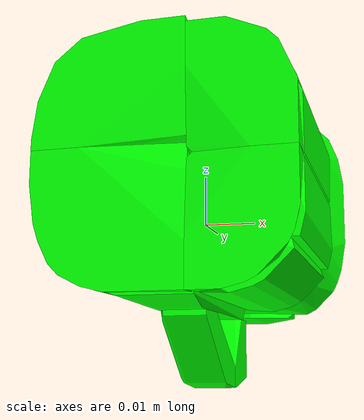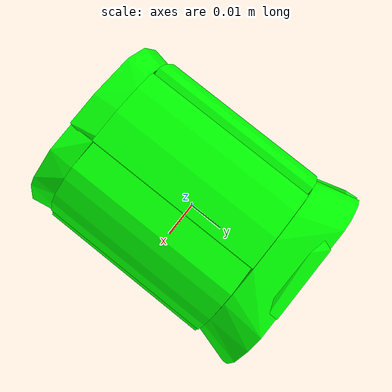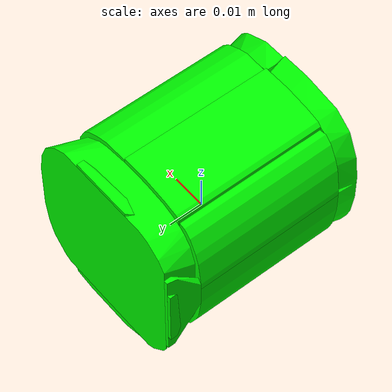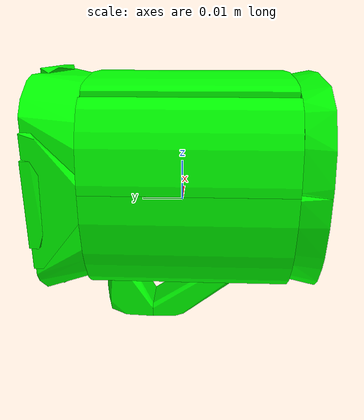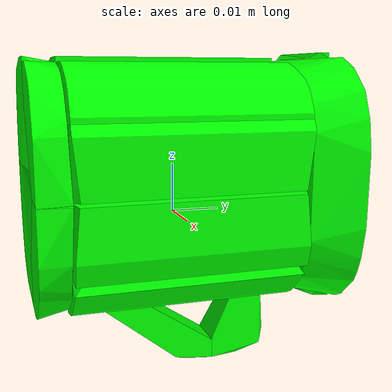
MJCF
<mujoco model="shapenet9-15">
  <asset>
    <mesh file="meshes/shapenet9-15/shapenet9-15_0.stl" name="shapenet9-15_0" scale="0.1 0.1 0.1"/>
    <mesh file="meshes/shapenet9-15/shapenet9-15_1.stl" name="shapenet9-15_1" scale="0.1 0.1 0.1"/>
    <mesh file="meshes/shapenet9-15/shapenet9-15_2.stl" name="shapenet9-15_2" scale="0.1 0.1 0.1"/>
    <mesh file="meshes/shapenet9-15/shapenet9-15_3.stl" name="shapenet9-15_3" scale="0.1 0.1 0.1"/>
    <mesh file="meshes/shapenet9-15/shapenet9-15_4.stl" name="shapenet9-15_4" scale="0.1 0.1 0.1"/>
    <mesh file="meshes/shapenet9-15/shapenet9-15_5.stl" name="shapenet9-15_5" scale="0.1 0.1 0.1"/>
    <mesh file="meshes/shapenet9-15/shapenet9-15_6.stl" name="shapenet9-15_6" scale="0.1 0.1 0.1"/>
    <mesh file="meshes/shapenet9-15/shapenet9-15_7.stl" name="shapenet9-15_7" scale="0.1 0.1 0.1"/>
    <mesh file="meshes/shapenet9-15/shapenet9-15_8.stl" name="shapenet9-15_8" scale="0.1 0.1 0.1"/>
    <mesh file="meshes/shapenet9-15/shapenet9-15_9.stl" name="shapenet9-15_9" scale="0.1 0.1 0.1"/>
    <mesh file="meshes/shapenet9-15/shapenet9-15_10.stl" name="shapenet9-15_10" scale="0.1 0.1 0.1"/>
    <mesh file="meshes/shapenet9-15/shapenet9-15_11.stl" name="shapenet9-15_11" scale="0.1 0.1 0.1"/>
    <mesh file="meshes/shapenet9-15/shapenet9-15_12.stl" name="shapenet9-15_12" scale="0.1 0.1 0.1"/>
    <mesh file="meshes/shapenet9-15/shapenet9-15_13.stl" name="shapenet9-15_13" scale="0.1 0.1 0.1"/>
    <mesh file="meshes/shapenet9-15/shapenet9-15_14.stl" name="shapenet9-15_14" scale="0.1 0.1 0.1"/>
    <mesh file="meshes/shapenet9-15/shapenet9-15_15.stl" name="shapenet9-15_15" scale="0.1 0.1 0.1"/>
    <mesh file="meshes/shapenet9-15/shapenet9-15_16.stl" name="shapenet9-15_16" scale="0.1 0.1 0.1"/>
    <mesh file="meshes/shapenet9-15/shapenet9-15_17.stl" name="shapenet9-15_17" scale="0.1 0.1 0.1"/>
    <mesh file="meshes/shapenet9-15/shapenet9-15_18.stl" name="shapenet9-15_18" scale="0.1 0.1 0.1"/>
  </asset>
  <worldbody>
    <body>
      <body name="collision">
        <geom pos="0 0 0" mesh="shapenet9-15_0" type="mesh" solimp="0.998 0.998 0.001" solref="0.001 1" density="100" friction="0.95 0.3 0.1" rgba="0 1 0 1" group="1" condim="4"/>
        <geom pos="0 0 0" mesh="shapenet9-15_1" type="mesh" solimp="0.998 0.998 0.001" solref="0.001 1" density="100" friction="0.95 0.3 0.1" rgba="0 1 0 1" group="1" condim="4"/>
        <geom pos="0 0 0" mesh="shapenet9-15_2" type="mesh" solimp="0.998 0.998 0.001" solref="0.001 1" density="100" friction="0.95 0.3 0.1" rgba="0 1 0 1" group="1" condim="4"/>
        <geom pos="0 0 0" mesh="shapenet9-15_3" type="mesh" solimp="0.998 0.998 0.001" solref="0.001 1" density="100" friction="0.95 0.3 0.1" rgba="0 1 0 1" group="1" condim="4"/>
        <geom pos="0 0 0" mesh="shapenet9-15_4" type="mesh" solimp="0.998 0.998 0.001" solref="0.001 1" density="100" friction="0.95 0.3 0.1" rgba="0 1 0 1" group="1" condim="4"/>
        <geom pos="0 0 0" mesh="shapenet9-15_5" type="mesh" solimp="0.998 0.998 0.001" solref="0.001 1" density="100" friction="0.95 0.3 0.1" rgba="0 1 0 1" group="1" condim="4"/>
        <geom pos="0 0 0" mesh="shapenet9-15_6" type="mesh" solimp="0.998 0.998 0.001" solref="0.001 1" density="100" friction="0.95 0.3 0.1" rgba="0 1 0 1" group="1" condim="4"/>
        <geom pos="0 0 0" mesh="shapenet9-15_7" type="mesh" solimp="0.998 0.998 0.001" solref="0.001 1" density="100" friction="0.95 0.3 0.1" rgba="0 1 0 1" group="1" condim="4"/>
        <geom pos="0 0 0" mesh="shapenet9-15_8" type="mesh" solimp="0.998 0.998 0.001" solref="0.001 1" density="100" friction="0.95 0.3 0.1" rgba="0 1 0 1" group="1" condim="4"/>
        <geom pos="0 0 0" mesh="shapenet9-15_9" type="mesh" solimp="0.998 0.998 0.001" solref="0.001 1" density="100" friction="0.95 0.3 0.1" rgba="0 1 0 1" group="1" condim="4"/>
        <geom pos="0 0 0" mesh="shapenet9-15_10" type="mesh" solimp="0.998 0.998 0.001" solref="0.001 1" density="100" friction="0.95 0.3 0.1" rgba="0 1 0 1" group="1" condim="4"/>
        <geom pos="0 0 0" mesh="shapenet9-15_11" type="mesh" solimp="0.998 0.998 0.001" solref="0.001 1" density="100" friction="0.95 0.3 0.1" rgba="0 1 0 1" group="1" condim="4"/>
        <geom pos="0 0 0" mesh="shapenet9-15_12" type="mesh" solimp="0.998 0.998 0.001" solref="0.001 1" density="100" friction="0.95 0.3 0.1" rgba="0 1 0 1" group="1" condim="4"/>
        <geom pos="0 0 0" mesh="shapenet9-15_13" type="mesh" solimp="0.998 0.998 0.001" solref="0.001 1" density="100" friction="0.95 0.3 0.1" rgba="0 1 0 1" group="1" condim="4"/>
        <geom pos="0 0 0" mesh="shapenet9-15_14" type="mesh" solimp="0.998 0.998 0.001" solref="0.001 1" density="100" friction="0.95 0.3 0.1" rgba="0 1 0 1" group="1" condim="4"/>
        <geom pos="0 0 0" mesh="shapenet9-15_15" type="mesh" solimp="0.998 0.998 0.001" solref="0.001 1" density="100" friction="0.95 0.3 0.1" rgba="0 1 0 1" group="1" condim="4"/>
        <geom pos="0 0 0" mesh="shapenet9-15_16" type="mesh" solimp="0.998 0.998 0.001" solref="0.001 1" density="100" friction="0.95 0.3 0.1" rgba="0 1 0 1" group="1" condim="4"/>
        <geom pos="0 0 0" mesh="shapenet9-15_17" type="mesh" solimp="0.998 0.998 0.001" solref="0.001 1" density="100" friction="0.95 0.3 0.1" rgba="0 1 0 1" group="1" condim="4"/>
        <geom pos="0 0 0" mesh="shapenet9-15_18" type="mesh" solimp="0.998 0.998 0.001" solref="0.001 1" density="100" friction="0.95 0.3 0.1" rgba="0 1 0 1" group="1" condim="4"/>
      </body>
      <body name="visual">
        <geom pos="0 0 0" mesh="shapenet9-15_0" type="mesh" rgba="0 1 0 1" conaffinity="0" contype="0" group="0" mass="0.0001"/>
        <geom pos="0 0 0" mesh="shapenet9-15_1" type="mesh" rgba="0 1 0 1" conaffinity="0" contype="0" group="0" mass="0.0001"/>
        <geom pos="0 0 0" mesh="shapenet9-15_2" type="mesh" rgba="0 1 0 1" conaffinity="0" contype="0" group="0" mass="0.0001"/>
        <geom pos="0 0 0" mesh="shapenet9-15_3" type="mesh" rgba="0 1 0 1" conaffinity="0" contype="0" group="0" mass="0.0001"/>
        <geom pos="0 0 0" mesh="shapenet9-15_4" type="mesh" rgba="0 1 0 1" conaffinity="0" contype="0" group="0" mass="0.0001"/>
        <geom pos="0 0 0" mesh="shapenet9-15_5" type="mesh" rgba="0 1 0 1" conaffinity="0" contype="0" group="0" mass="0.0001"/>
        <geom pos="0 0 0" mesh="shapenet9-15_6" type="mesh" rgba="0 1 0 1" conaffinity="0" contype="0" group="0" mass="0.0001"/>
        <geom pos="0 0 0" mesh="shapenet9-15_7" type="mesh" rgba="0 1 0 1" conaffinity="0" contype="0" group="0" mass="0.0001"/>
        <geom pos="0 0 0" mesh="shapenet9-15_8" type="mesh" rgba="0 1 0 1" conaffinity="0" contype="0" group="0" mass="0.0001"/>
        <geom pos="0 0 0" mesh="shapenet9-15_9" type="mesh" rgba="0 1 0 1" conaffinity="0" contype="0" group="0" mass="0.0001"/>
        <geom pos="0 0 0" mesh="shapenet9-15_10" type="mesh" rgba="0 1 0 1" conaffinity="0" contype="0" group="0" mass="0.0001"/>
        <geom pos="0 0 0" mesh="shapenet9-15_11" type="mesh" rgba="0 1 0 1" conaffinity="0" contype="0" group="0" mass="0.0001"/>
        <geom pos="0 0 0" mesh="shapenet9-15_12" type="mesh" rgba="0 1 0 1" conaffinity="0" contype="0" group="0" mass="0.0001"/>
        <geom pos="0 0 0" mesh="shapenet9-15_13" type="mesh" rgba="0 1 0 1" conaffinity="0" contype="0" group="0" mass="0.0001"/>
        <geom pos="0 0 0" mesh="shapenet9-15_14" type="mesh" rgba="0 1 0 1" conaffinity="0" contype="0" group="0" mass="0.0001"/>
        <geom pos="0 0 0" mesh="shapenet9-15_15" type="mesh" rgba="0 1 0 1" conaffinity="0" contype="0" group="0" mass="0.0001"/>
        <geom pos="0 0 0" mesh="shapenet9-15_16" type="mesh" rgba="0 1 0 1" conaffinity="0" contype="0" group="0" mass="0.0001"/>
        <geom pos="0 0 0" mesh="shapenet9-15_17" type="mesh" rgba="0 1 0 1" conaffinity="0" contype="0" group="0" mass="0.0001"/>
        <geom pos="0 0 0" mesh="shapenet9-15_18" type="mesh" rgba="0 1 0 1" conaffinity="0" contype="0" group="0" mass="0.0001"/>
      </body>
      <site rgba="0 0 0 0" size="0.005" pos="0 0 -0.06" name="bottom_site"/>
      <site rgba="0 0 0 0" size="0.005" pos="0 0 0.04" name="top_site"/>
      <site rgba="0 0 0 0" size="0.005" pos="0.025 0.025 0" name="horizontal_radius_site"/>
    </body>
  </worldbody>
</mujoco>
